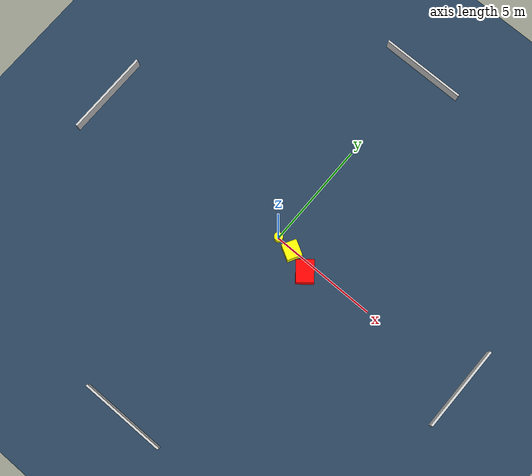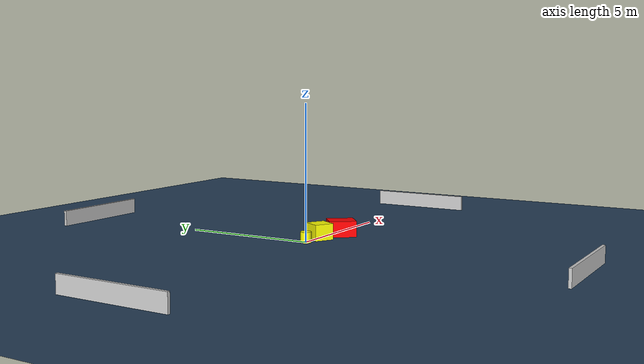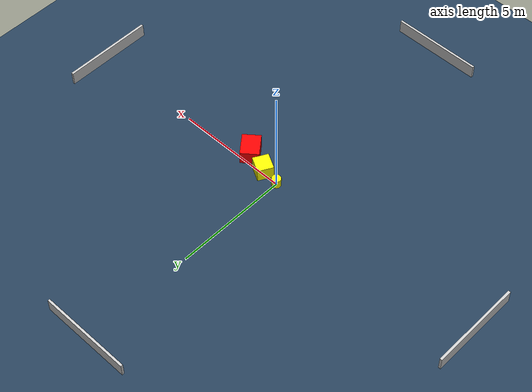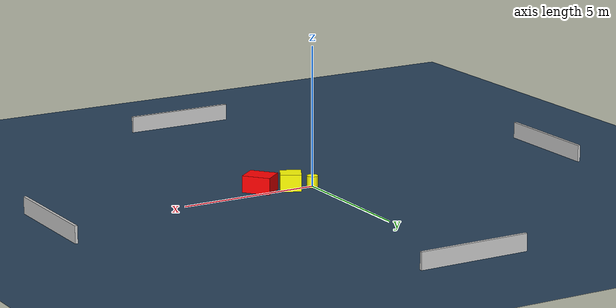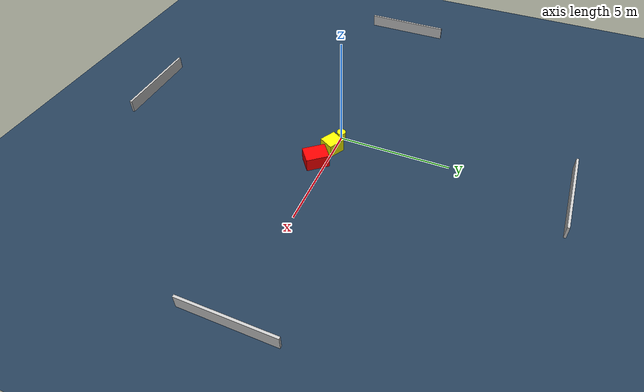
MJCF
<?xml version="1.0" ?>
<mujoco model="generated_environment">
  <option timestep="0.01" integrator="RK4" cone="elliptic"/>
  <default>
    <geom density="1"/>
  </default>
  <asset>
    <texture builtin="gradient" height="3072" name="skybox" rgb1="0.3 0.5 0.7" rgb2="0 0 0" type="skybox" width="512"/>
    <texture builtin="checker" height="300" name="groundplane" rgb1="0.2 0.3 0.4" rgb2="0.1 0.2 0.3" type="2d" width="300"/>
    <material name="groundplane" reflectance="0.2" texrepeat="5 5" texture="groundplane"/>
  </asset>
  <worldbody>
    <light dir="0 0 -1" directional="true" pos="0 0 1.5"/>
    <geom condim="3" friction="0.5 0.005 0.001" material="groundplane" name="floor" pos="0 0 0" size="0 0 0.05" type="plane"/>
    <body name="walls">
      <geom name="wall_1" condim="4" pos="-10.0 0.0 0.3" rgba="0.800000011920929 0.800000011920929 0.800000011920929 1.0" size="0.05 2.0 0.3" type="box"/>
      <geom name="wall_2" condim="4" pos="10.0 0.0 0.3" rgba="0.800000011920929 0.800000011920929 0.800000011920929 1.0" size="0.05 2.0 0.3" type="box"/>
      <geom name="wall_3" condim="4" pos="0.0 -10.0 0.3" rgba="0.800000011920929 0.800000011920929 0.800000011920929 1.0" size="2.0 0.05 0.3" type="box"/>
      <geom name="wall_4" condim="4" pos="0.0 10.0 0.3" rgba="0.800000011920929 0.800000011920929 0.800000011920929 1.0" size="2.0 0.05 0.3" type="box"/>
    </body>
    <body name="robot">
      <joint name="joint_x" type="slide" pos="0 0 0" axis="1 0 0"/>
      <joint name="joint_y" type="slide" pos="0 0 0" axis="0 1 0"/>
      <geom name="robot" type="cylinder" pos="0.0 0.0 0.2" size="0.2 0.2 0.0" mass="5.0" friction="1.0 0.005 0.0001" condim="4" rgba="1.0 1.0 0.0 1.0"/>
    </body>
    <body name="obstacle_1_movable">
      <geom name="obstacle_1_movable" condim="4" pos="0.8276080797259455 -0.09243421814680466 0.3" euler="0 0 61.193167826000064" friction="0.0 0.005 0.001" rgba="1.0 1.0 0.0 1.0" size="0.34902054695711304 0.37185566376452517 0.3" type="box" mass="0.1"/>
      <joint type="free"/>
    </body>
    <body name="obstacle_2_static">
      <geom name="obstacle_2_static" condim="4" pos="1.8502644155887078 -0.4314368416714082 0.3" euler="0 0 218.94706499035377" friction="0.0 0.005 0.001" rgba="1.0 0.0 0.0 1.0" size="0.4001263853791269 0.5063820140110367 0.3" type="box"/>
    </body>
  </worldbody>
  <actuator>
    <motor name="actuator_x" joint="joint_x" gear="1" ctrlrange="-1 1"/>
    <motor name="actuator_y" joint="joint_y" gear="1" ctrlrange="-1 1"/>
  </actuator>
</mujoco>
